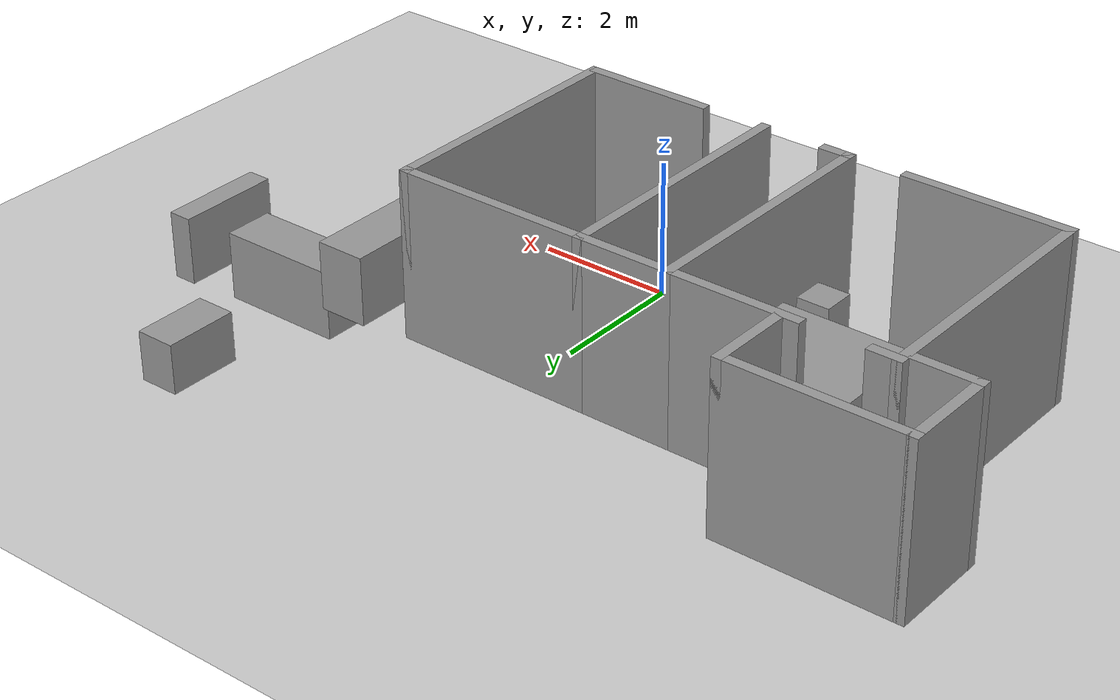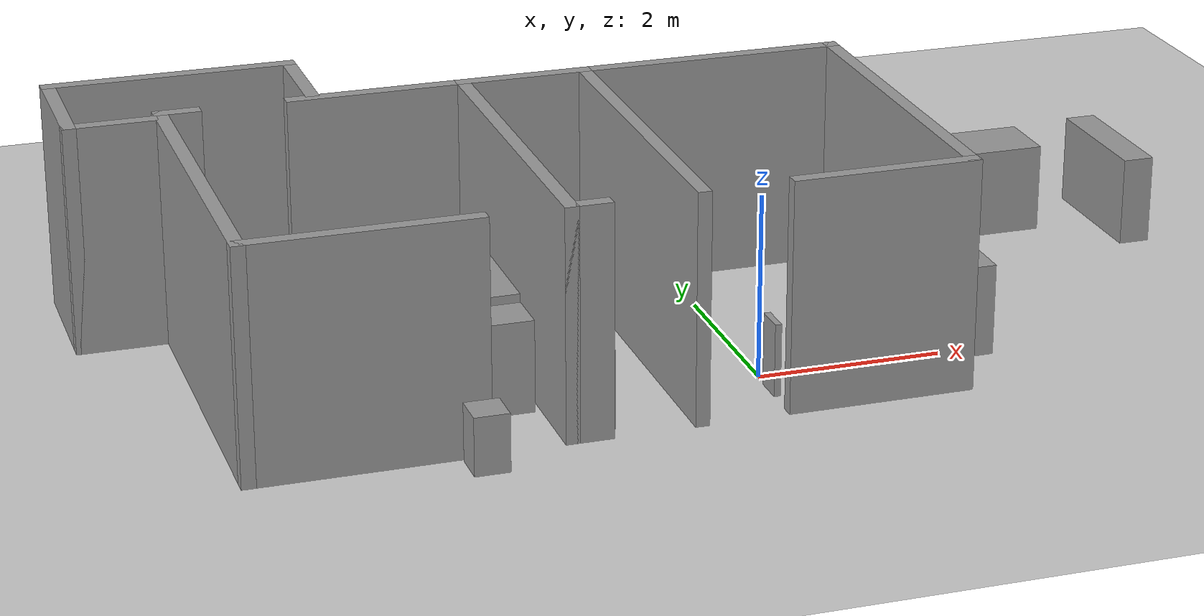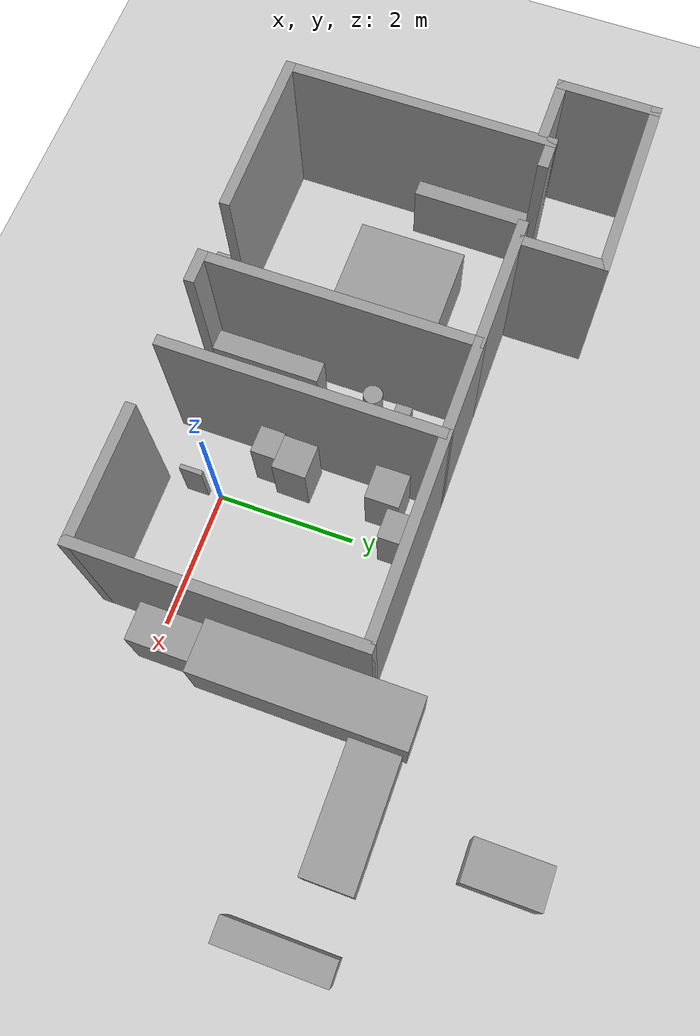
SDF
<sdf version="1.6">
 <world name="default">
  <model name="ground_plane">
   <static>1</static>
   <link name="link">
    <collision name="collision">
     <geometry><plane><normal>0 0 1</normal><size>100 100</size></plane></geometry>
     <surface><friction><ode><mu>100</mu><mu2>50</mu2></ode></friction></surface>
    </collision>
    <visual name="visual">
     <cast_shadows>0</cast_shadows>
     <geometry><plane><normal>0 0 1</normal><size>100 100</size></plane></geometry>
     <material>
      <script><uri>file://media/materials/scripts/gazebo.material</uri><name>Gazebo/Grey</name></script>
     </material>
    </visual>
   </link>
  </model>
  <model name="cma_escritorio">
   <pose>-1.8304 1.03024 0 0 -0 0</pose>
   <link name="Wall_11">
    <collision name="Wall_11_Collision">
     <geometry><box><size>2 0.15 2.5</size></box></geometry>
     <pose>0 0 1.25 0 -0 0</pose>
    </collision>
    <visual name="Wall_11_Visual">
     <pose>0 0 1.25 0 -0 0</pose>
     <geometry><box><size>2 0.15 2.5</size></box></geometry>
     <material>
      <script><uri>file://media/materials/scripts/gazebo.material</uri><name>Gazebo/Grey</name></script>
      <ambient>1 1 1 1</ambient>
     </material>
    </visual>
    <pose>-1.4 1.93 0 0 -0 3.14159</pose>
   </link>
   <link name="Wall_2">
    <collision name="Wall_2_Collision">
     <geometry><box><size>4 0.15 2.5</size></box></geometry>
     <pose>0 0 1.25 0 -0 0</pose>
    </collision>
    <visual name="Wall_2_Visual">
     <pose>0 0 1.25 0 -0 0</pose>
     <geometry><box><size>4 0.15 2.5</size></box></geometry>
     <material>
      <script><uri>file://media/materials/scripts/gazebo.material</uri><name>Gazebo/Grey</name></script>
      <ambient>1 1 1 1</ambient>
     </material>
    </visual>
    <pose>0.875 0.005 0 0 -0 1.5708</pose>
   </link>
   <link name="Wall_25">
    <collision name="Wall_25_Collision">
     <geometry><box><size>2.5 0.15 2.5</size></box></geometry>
     <pose>0 0 1.25 0 -0 0</pose>
    </collision>
    <visual name="Wall_25_Visual">
     <pose>0 0 1.25 0 -0 0</pose>
     <geometry><box><size>2.5 0.15 2.5</size></box></geometry>
     <material>
      <script><uri>file://media/materials/scripts/gazebo.material</uri><name>Gazebo/Grey</name></script>
      <ambient>1 1 1 1</ambient>
     </material>
    </visual>
    <pose>-2.55 -1.93 0 0 -0 3.14159</pose>
   </link>
   <link name="Wall_26">
    <collision name="Wall_26_Collision">
     <geometry><box><size>4 0.15 2.5</size></box></geometry>
     <pose>0 0 1.25 0 -0 0</pose>
    </collision>
    <visual name="Wall_26_Visual">
     <pose>0 0 1.25 0 -0 0</pose>
     <geometry><box><size>4 0.15 2.5</size></box></geometry>
     <material>
      <script><uri>file://media/materials/scripts/gazebo.material</uri><name>Gazebo/Grey</name></script>
      <ambient>1 1 1 1</ambient>
     </material>
    </visual>
    <pose>-3.725 -0.005 0 0 -0 1.5708</pose>
   </link>
   <link name="Wall_27">
    <collision name="Wall_27_Collision">
     <geometry><box><size>0.5 0.15 2.5</size></box></geometry>
     <pose>0 0 1.25 0 -0 0</pose>
    </collision>
    <visual name="Wall_27_Visual">
     <pose>0 0 1.25 0 -0 0</pose>
     <geometry><box><size>0.5 0.15 2.5</size></box></geometry>
     <material>
      <script><uri>file://media/materials/scripts/gazebo.material</uri><name>Gazebo/Grey</name></script>
      <ambient>1 1 1 1</ambient>
     </material>
    </visual>
    <pose>-3.55 1.92 0 0 -0 0</pose>
   </link>
   <link name="Wall_3">
    <collision name="Wall_3_Collision">
     <geometry><box><size>3 0.15 2.5</size></box></geometry>
     <pose>0 0 1.25 0 -0 0</pose>
    </collision>
    <visual name="Wall_3_Visual">
     <pose>0 0 1.25 0 -0 0</pose>
     <geometry><box><size>3 0.15 2.5</size></box></geometry>
     <material>
      <script><uri>file://media/materials/scripts/gazebo.material</uri><name>Gazebo/Grey</name></script>
      <ambient>1 1 1 1</ambient>
     </material>
    </visual>
    <pose>2.3 1.93 0 0 -0 0</pose>
   </link>
   <link name="Wall_4">
    <collision name="Wall_4_Collision">
     <geometry><box><size>4 0.15 2.5</size></box></geometry>
     <pose>0 0 1.25 0 -0 0</pose>
    </collision>
    <visual name="Wall_4_Visual">
     <pose>0 0 1.25 0 -0 0</pose>
     <geometry><box><size>4 0.15 2.5</size></box></geometry>
     <material>
      <script><uri>file://media/materials/scripts/gazebo.material</uri><name>Gazebo/Grey</name></script>
      <ambient>1 1 1 1</ambient>
     </material>
    </visual>
    <pose>3.725 0.005 0 0 0 -1.5708</pose>
   </link>
   <link name="Wall_5">
    <collision name="Wall_5_Collision">
     <geometry><box><size>2 0.15 2.5</size></box></geometry>
     <pose>0 0 1.25 0 -0 0</pose>
    </collision>
    <visual name="Wall_5_Visual">
     <pose>0 0 1.25 0 -0 0</pose>
     <geometry><box><size>2 0.15 2.5</size></box></geometry>
     <material>
      <script><uri>file://media/materials/scripts/gazebo.material</uri><name>Gazebo/Grey</name></script>
      <ambient>1 1 1 1</ambient>
     </material>
    </visual>
    <pose>2.8 -1.92 0 0 -0 3.14159</pose>
   </link>
   <link name="Wall_7">
    <collision name="Wall_7_Collision">
     <geometry><box><size>1.5 0.15 2.5</size></box></geometry>
     <pose>0 0 1.25 0 -0 0</pose>
    </collision>
    <visual name="Wall_7_Visual">
     <pose>0 0 1.25 0 -0 0</pose>
     <geometry><box><size>1.5 0.15 2.5</size></box></geometry>
     <material>
      <script><uri>file://media/materials/scripts/gazebo.material</uri><name>Gazebo/Grey</name></script>
      <ambient>1 1 1 1</ambient>
     </material>
    </visual>
    <pose>0.2 1.93 0 0 -0 3.14159</pose>
   </link>
   <link name="Wall_8">
    <collision name="Wall_8_Collision">
     <geometry><box><size>4 0.15 2.5</size></box></geometry>
     <pose>0 0 1.25 0 -0 0</pose>
    </collision>
    <visual name="Wall_8_Visual">
     <pose>0 0 1.25 0 -0 0</pose>
     <geometry><box><size>4 0.15 2.5</size></box></geometry>
     <material>
      <script><uri>file://media/materials/scripts/gazebo.material</uri><name>Gazebo/Grey</name></script>
      <ambient>1 1 1 1</ambient>
     </material>
    </visual>
    <pose>-0.475 0.005 0 0 0 -1.5708</pose>
   </link>
   <link name="Wall_9">
    <collision name="Wall_9_Collision">
     <geometry><box><size>0.5 0.15 2.5</size></box></geometry>
     <pose>0 0 1.25 0 -0 0</pose>
    </collision>
    <visual name="Wall_9_Visual">
     <pose>0 0 1.25 0 -0 0</pose>
     <geometry><box><size>0.5 0.15 2.5</size></box></geometry>
     <material>
      <script><uri>file://media/materials/scripts/gazebo.material</uri><name>Gazebo/Grey</name></script>
      <ambient>1 1 1 1</ambient>
     </material>
    </visual>
    <pose>-0.3 -1.92 0 0 -0 0</pose>
   </link>
   <static>1</static>
  </model>
  <model name="cma_banheiro">
   <pose>-5.22928 3.4871 0 0 -0 0</pose>
   <link name="Wall_0">
    <collision name="Wall_0_Collision">
     <geometry><box><size>1 0.15 2.5</size></box></geometry>
     <pose>0 0 1.25 0 -0 0</pose>
    </collision>
    <visual name="Wall_0_Visual">
     <pose>0 0 1.25 0 -0 0</pose>
     <geometry><box><size>1 0.15 2.5</size></box></geometry>
     <material>
      <script><uri>file://media/materials/scripts/gazebo.material</uri><name>Gazebo/Grey</name></script>
      <ambient>1 1 1 1</ambient>
     </material>
    </visual>
    <pose>-0.875 -0.675 0 0 -0 3.14159</pose>
   </link>
   <link name="Wall_1">
    <collision name="Wall_1_Collision">
     <geometry><box><size>1.5 0.15 2.5</size></box></geometry>
     <pose>0 0 1.25 0 -0 0</pose>
    </collision>
    <visual name="Wall_1_Visual">
     <pose>0 0 1.25 0 -0 0</pose>
     <geometry><box><size>1.5 0.15 2.5</size></box></geometry>
     <material>
      <script><uri>file://media/materials/scripts/gazebo.material</uri><name>Gazebo/Grey</name></script>
      <ambient>1 1 1 1</ambient>
     </material>
    </visual>
    <pose>-1.3 0 0 0 -0 1.5708</pose>
   </link>
   <link name="Wall_2">
    <collision name="Wall_2_Collision">
     <geometry><box><size>2.75 0.15 2.5</size></box></geometry>
     <pose>0 0 1.25 0 -0 0</pose>
    </collision>
    <visual name="Wall_2_Visual">
     <pose>0 0 1.25 0 -0 0</pose>
     <geometry><box><size>2.75 0.15 2.5</size></box></geometry>
     <material>
      <script><uri>file://media/materials/scripts/gazebo.material</uri><name>Gazebo/Grey</name></script>
      <ambient>1 1 1 1</ambient>
     </material>
    </visual>
    <pose>0 0.675 0 0 -0 0</pose>
   </link>
   <link name="Wall_4">
    <collision name="Wall_4_Collision">
     <geometry><box><size>1.25 0.15 2.5</size></box></geometry>
     <pose>0 0 1.25 0 -0 0</pose>
    </collision>
    <visual name="Wall_4_Visual">
     <pose>0 0 1.25 0 -0 0</pose>
     <geometry><box><size>1.25 0.15 2.5</size></box></geometry>
     <material>
      <script><uri>file://media/materials/scripts/gazebo.material</uri><name>Gazebo/Grey</name></script>
      <ambient>1 1 1 1</ambient>
     </material>
    </visual>
    <pose>1.3 0.125 0 0 0 -1.5708</pose>
   </link>
   <static>1</static>
  </model>
  <model name="cma_gaveteiro_pequeno_0">
   <link name="link_0">
    <pose>0.256174 1.25055 0.5 0 -0 0</pose>
    <inertial>
     <mass>0.187186</mass>
     <inertia>
      <ixx>0.01851</ixx>
      <ixy>0</ixy>
      <ixz>0</ixz>
      <iyy>0.0185276</iyy>
      <iyz>0</iyz>
      <izz>0.00583981</izz>
     </inertia>
    </inertial>
    <visual name="visual">
     <geometry><box><size>0.433317 0.432002 1</size></box></geometry>
     <material>
      <lighting>1</lighting>
      <script><uri>file://media/materials/scripts/gazebo.material</uri><name>Gazebo/Grey</name></script>
      <ambient>0.3 0.3 0.3 1</ambient>
      <diffuse>0.7 0.7 0.7 1</diffuse>
      <specular>0.01 0.01 0.01 1</specular>
      <emissive>0 0 0 1</emissive>
     </material>
    </visual>
    <collision name="collision">
     <geometry><box><size>0.433317 0.432002 1</size></box></geometry>
     <surface>
      <friction>
       <ode><mu>1</mu><mu2>1</mu2><fdir1>0 0 0</fdir1><slip1>0</slip1><slip2>0</slip2></ode>
       <torsional>
        <coefficient>1</coefficient>
        <patch_radius>0</patch_radius>
        <surface_radius>0</surface_radius>
        <use_patch_radius>1</use_patch_radius>
        <ode><slip>0</slip></ode>
       </torsional>
      </friction>
      <bounce><restitution_coefficient>0</restitution_coefficient><threshold>1e+06</threshold></bounce>
      <contact>
       <collide_without_contact>0</collide_without_contact>
       <collide_without_contact_bitmask>1</collide_without_contact_bitmask>
       <collide_bitmask>1</collide_bitmask>
       <ode>
        <soft_cfm>0</soft_cfm>
        <soft_erp>0.2</soft_erp>
        <kp>1e+13</kp>
        <kd>1</kd>
        <max_vel>0.01</max_vel>
        <min_depth>0</min_depth>
       </ode>
       <bullet>
        <split_impulse>1</split_impulse>
        <split_impulse_penetration_threshold>-0.01</split_impulse_penetration_threshold>
        <soft_cfm>0</soft_cfm>
        <soft_erp>0.2</soft_erp>
        <kp>1e+13</kp>
        <kd>1</kd>
       </bullet>
      </contact>
     </surface>
    </collision>
   </link>
   <static>0</static>
   <pose>-0.336081 1.39513 5e-06 -6e-06 -1e-06 -8.4e-05</pose>
  </model>
  <model name="cma_gaveteiro">
   <link name="link_0">
    <pose>-0 4e-06 0 0 -0 0</pose>
    <inertial>
     <mass>0.245086</mass>
     <inertia>
      <ixx>0.025418</ixx>
      <ixy>0</ixy>
      <ixz>0</ixz>
      <iyy>0.0254411</iyy>
      <iyz>0</iyz>
      <izz>0.0100113</izz>
     </inertia>
    </inertial>
    <visual name="visual">
     <geometry><box><size>0.495657 0.494491 1</size></box></geometry>
     <material>
      <lighting>1</lighting>
      <script><uri>file://media/materials/scripts/gazebo.material</uri><name>Gazebo/Grey</name></script>
      <ambient>0.3 0.3 0.3 1</ambient>
      <diffuse>0.7 0.7 0.7 1</diffuse>
      <specular>0.01 0.01 0.01 1</specular>
      <emissive>0 0 0 1</emissive>
     </material>
    </visual>
    <collision name="collision">
     <geometry><box><size>0.495657 0.494491 1</size></box></geometry>
     <surface>
      <friction>
       <ode><mu>1</mu><mu2>1</mu2><fdir1>0 0 0</fdir1><slip1>0</slip1><slip2>0</slip2></ode>
       <torsional>
        <coefficient>1</coefficient>
        <patch_radius>0</patch_radius>
        <surface_radius>0</surface_radius>
        <use_patch_radius>1</use_patch_radius>
        <ode><slip>0</slip></ode>
       </torsional>
      </friction>
      <bounce><restitution_coefficient>0</restitution_coefficient><threshold>1e+06</threshold></bounce>
      <contact>
       <collide_without_contact>0</collide_without_contact>
       <collide_without_contact_bitmask>1</collide_without_contact_bitmask>
       <collide_bitmask>1</collide_bitmask>
       <ode>
        <soft_cfm>0</soft_cfm>
        <soft_erp>0.2</soft_erp>
        <kp>1e+13</kp>
        <kd>1</kd>
        <max_vel>0.01</max_vel>
        <min_depth>0</min_depth>
       </ode>
       <bullet>
        <split_impulse>1</split_impulse>
        <split_impulse_penetration_threshold>-0.01</split_impulse_penetration_threshold>
        <soft_cfm>0</soft_cfm>
        <soft_erp>0.2</soft_erp>
        <kp>1e+13</kp>
        <kd>1</kd>
       </bullet>
      </contact>
     </surface>
    </collision>
   </link>
   <static>0</static>
   <pose>-0.591981 2.32617 0.500001 1e-06 1e-06 0.000361</pose>
  </model>
  <model name="cma_gaveteiro_0">
   <link name="link_0">
    <pose>-0 4e-06 0 0 -0 0</pose>
    <inertial>
     <mass>0.245086</mass>
     <inertia>
      <ixx>0.025418</ixx>
      <ixy>0</ixy>
      <ixz>0</ixz>
      <iyy>0.0254411</iyy>
      <iyz>0</iyz>
      <izz>0.0100113</izz>
     </inertia>
    </inertial>
    <visual name="visual">
     <geometry><box><size>0.495657 0.494491 1</size></box></geometry>
     <material>
      <lighting>1</lighting>
      <script><uri>file://media/materials/scripts/gazebo.material</uri><name>Gazebo/Grey</name></script>
      <ambient>0.3 0.3 0.3 1</ambient>
      <diffuse>0.7 0.7 0.7 1</diffuse>
      <specular>0.01 0.01 0.01 1</specular>
      <emissive>0 0 0 1</emissive>
     </material>
    </visual>
    <collision name="collision">
     <geometry><box><size>0.495657 0.494491 1</size></box></geometry>
     <surface>
      <friction>
       <ode><mu>1</mu><mu2>1</mu2><fdir1>0 0 0</fdir1><slip1>0</slip1><slip2>0</slip2></ode>
       <torsional>
        <coefficient>1</coefficient>
        <patch_radius>0</patch_radius>
        <surface_radius>0</surface_radius>
        <use_patch_radius>1</use_patch_radius>
        <ode><slip>0</slip></ode>
       </torsional>
      </friction>
      <bounce><restitution_coefficient>0</restitution_coefficient><threshold>1e+06</threshold></bounce>
      <contact>
       <collide_without_contact>0</collide_without_contact>
       <collide_without_contact_bitmask>1</collide_without_contact_bitmask>
       <collide_bitmask>1</collide_bitmask>
       <ode>
        <soft_cfm>0</soft_cfm>
        <soft_erp>0.2</soft_erp>
        <kp>1e+13</kp>
        <kd>1</kd>
        <max_vel>0.01</max_vel>
        <min_depth>0</min_depth>
       </ode>
       <bullet>
        <split_impulse>1</split_impulse>
        <split_impulse_penetration_threshold>-0.01</split_impulse_penetration_threshold>
        <soft_cfm>0</soft_cfm>
        <soft_erp>0.2</soft_erp>
        <kp>1e+13</kp>
        <kd>1</kd>
       </bullet>
      </contact>
     </surface>
    </collision>
   </link>
   <static>0</static>
   <pose>-0.577938 0.983942 0.5 -1e-06 -1e-06 -0.015</pose>
  </model>
  <model name="cma_apoio_s">
   <link name="link_1">
    <pose>-1.9376 -3.46551 0.5 0 -0 0</pose>
    <inertial>
     <mass>0.0878463</mass>
     <inertia>
      <ixx>0.00392696</ixx>
      <ixy>0</ixy>
      <ixz>0</ixz>
      <iyy>0.00385356</iyy>
      <iyz>0</iyz>
      <izz>0.0020587</izz>
     </inertia>
    </inertial>
    <visual name="visual">
     <geometry><box><size>0.368223 0.381592 0.625118</size></box></geometry>
     <material>
      <lighting>1</lighting>
      <script><uri>file://media/materials/scripts/gazebo.material</uri><name>Gazebo/Grey</name></script>
      <ambient>0.3 0.3 0.3 1</ambient>
      <diffuse>0.7 0.7 0.7 1</diffuse>
      <specular>0.01 0.01 0.01 1</specular>
      <emissive>0 0 0 1</emissive>
     </material>
    </visual>
    <collision name="collision">
     <geometry><box><size>0.368223 0.381592 0.625118</size></box></geometry>
     <surface>
      <friction>
       <ode><mu>1</mu><mu2>1</mu2><fdir1>0 0 0</fdir1><slip1>0</slip1><slip2>0</slip2></ode>
       <torsional>
        <coefficient>1</coefficient>
        <patch_radius>0</patch_radius>
        <surface_radius>0</surface_radius>
        <use_patch_radius>1</use_patch_radius>
        <ode><slip>0</slip></ode>
       </torsional>
      </friction>
      <bounce><restitution_coefficient>0</restitution_coefficient><threshold>1e+06</threshold></bounce>
      <contact>
       <collide_without_contact>0</collide_without_contact>
       <collide_without_contact_bitmask>1</collide_without_contact_bitmask>
       <collide_bitmask>1</collide_bitmask>
       <ode>
        <soft_cfm>0</soft_cfm>
        <soft_erp>0.2</soft_erp>
        <kp>1e+13</kp>
        <kd>1</kd>
        <max_vel>0.01</max_vel>
        <min_depth>0</min_depth>
       </ode>
       <bullet>
        <split_impulse>1</split_impulse>
        <split_impulse_penetration_threshold>-0.01</split_impulse_penetration_threshold>
        <soft_cfm>0</soft_cfm>
        <soft_erp>0.2</soft_erp>
        <kp>1e+13</kp>
        <kd>1</kd>
       </bullet>
      </contact>
     </surface>
    </collision>
   </link>
   <static>0</static>
   <pose>-1.3105 2.2718 -0.187442 -1e-06 -1e-06 -0.000413</pose>
  </model>
  <model name="cma_cama_c_0">
   <link name="link_0">
    <pose>5e-06 -4e-06 0 0 -0 0</pose>
    <inertial>
     <mass>3.18358</mass>
     <inertia><ixx>0.934862</ixx><ixy>0</ixy><ixz>0</ixz><iyy>1.33069</iyy><iyz>0</iyz><izz>1.73496</izz></inertia>
    </inertial>
    <visual name="visual">
     <geometry><box><size>2.00394 1.58866 1</size></box></geometry>
     <material>
      <lighting>1</lighting>
      <script><uri>file://media/materials/scripts/gazebo.material</uri><name>Gazebo/Grey</name></script>
      <ambient>0.3 0.3 0.3 1</ambient>
      <diffuse>0.7 0.7 0.7 1</diffuse>
      <specular>0.01 0.01 0.01 1</specular>
      <emissive>0 0 0 1</emissive>
     </material>
    </visual>
    <collision name="collision">
     <geometry><box><size>2.00394 1.58866 1</size></box></geometry>
     <surface>
      <friction>
       <ode><mu>1</mu><mu2>1</mu2><fdir1>0 0 0</fdir1><slip1>0</slip1><slip2>0</slip2></ode>
       <torsional>
        <coefficient>1</coefficient>
        <patch_radius>0</patch_radius>
        <surface_radius>0</surface_radius>
        <use_patch_radius>1</use_patch_radius>
        <ode><slip>0</slip></ode>
       </torsional>
      </friction>
      <bounce><restitution_coefficient>0</restitution_coefficient><threshold>1e+06</threshold></bounce>
      <contact>
       <collide_without_contact>0</collide_without_contact>
       <collide_without_contact_bitmask>1</collide_without_contact_bitmask>
       <collide_bitmask>1</collide_bitmask>
       <ode>
        <soft_cfm>0</soft_cfm>
        <soft_erp>0.2</soft_erp>
        <kp>1e+13</kp>
        <kd>1</kd>
        <max_vel>0.01</max_vel>
        <min_depth>0</min_depth>
       </ode>
       <bullet>
        <split_impulse>1</split_impulse>
        <split_impulse_penetration_threshold>-0.01</split_impulse_penetration_threshold>
        <soft_cfm>0</soft_cfm>
        <soft_erp>0.2</soft_erp>
        <kp>1e+13</kp>
        <kd>1</kd>
       </bullet>
      </contact>
     </surface>
    </collision>
   </link>
   <static>0</static>
   <pose>-3.38238 1.38787 0.5 0 0 -2e-06</pose>
  </model>
  <model name="cma_bau_s_0">
   <link name="link_1">
    <pose>0.109594 0.272293 0 0 -0 0</pose>
    <inertial>
     <mass>0.125479</mass>
     <inertia>
      <ixx>0.00641943</ixx>
      <ixy>0</ixy>
      <ixz>0</ixz>
      <iyy>0.0059754</iyy>
      <iyz>0</iyz>
      <izz>0.00422085</izz>
     </inertia>
    </inertial>
    <visual name="visual">
     <geometry><box><size>0.424964 0.472283 0.625118</size></box></geometry>
     <material>
      <lighting>1</lighting>
      <script><uri>file://media/materials/scripts/gazebo.material</uri><name>Gazebo/Grey</name></script>
      <ambient>0.3 0.3 0.3 1</ambient>
      <diffuse>0.7 0.7 0.7 1</diffuse>
      <specular>0.01 0.01 0.01 1</specular>
      <emissive>0 0 0 1</emissive>
     </material>
    </visual>
    <collision name="collision">
     <geometry><box><size>0.424964 0.472283 0.625118</size></box></geometry>
     <surface>
      <friction>
       <ode><mu>1</mu><mu2>1</mu2><fdir1>0 0 0</fdir1><slip1>0</slip1><slip2>0</slip2></ode>
       <torsional>
        <coefficient>1</coefficient>
        <patch_radius>0</patch_radius>
        <surface_radius>0</surface_radius>
        <use_patch_radius>1</use_patch_radius>
        <ode><slip>0</slip></ode>
       </torsional>
      </friction>
      <bounce><restitution_coefficient>0</restitution_coefficient><threshold>1e+06</threshold></bounce>
      <contact>
       <collide_without_contact>0</collide_without_contact>
       <collide_without_contact_bitmask>1</collide_without_contact_bitmask>
       <collide_bitmask>1</collide_bitmask>
       <ode>
        <soft_cfm>0</soft_cfm>
        <soft_erp>0.2</soft_erp>
        <kp>1e+13</kp>
        <kd>1</kd>
        <max_vel>0.01</max_vel>
        <min_depth>0</min_depth>
       </ode>
       <bullet>
        <split_impulse>1</split_impulse>
        <split_impulse_penetration_threshold>-0.01</split_impulse_penetration_threshold>
        <soft_cfm>0</soft_cfm>
        <soft_erp>0.2</soft_erp>
        <kp>1e+13</kp>
        <kd>1</kd>
       </bullet>
      </contact>
     </surface>
    </collision>
   </link>
   <static>0</static>
   <pose>-2.76528 2.24285 0.312559 3e-06 -0 -0.000649</pose>
  </model>
  <model name="cma_gaveteiro_1">
   <link name="link_0">
    <pose>-0 4e-06 0 0 -0 0</pose>
    <inertial>
     <mass>0.245086</mass>
     <inertia>
      <ixx>0.025418</ixx>
      <ixy>0</ixy>
      <ixz>0</ixz>
      <iyy>0.0254411</iyy>
      <iyz>0</iyz>
      <izz>0.0100113</izz>
     </inertia>
    </inertial>
    <visual name="visual">
     <geometry><box><size>0.495657 0.494491 1</size></box></geometry>
     <material>
      <lighting>1</lighting>
      <script><uri>file://media/materials/scripts/gazebo.material</uri><name>Gazebo/Grey</name></script>
      <ambient>0.3 0.3 0.3 1</ambient>
      <diffuse>0.7 0.7 0.7 1</diffuse>
      <specular>0.01 0.01 0.01 1</specular>
      <emissive>0 0 0 1</emissive>
     </material>
    </visual>
    <collision name="collision">
     <geometry><box><size>0.495657 0.494491 1</size></box></geometry>
     <surface>
      <friction>
       <ode><mu>1</mu><mu2>1</mu2><fdir1>0 0 0</fdir1><slip1>0</slip1><slip2>0</slip2></ode>
       <torsional>
        <coefficient>1</coefficient>
        <patch_radius>0</patch_radius>
        <surface_radius>0</surface_radius>
        <use_patch_radius>1</use_patch_radius>
        <ode><slip>0</slip></ode>
       </torsional>
      </friction>
      <bounce><restitution_coefficient>0</restitution_coefficient><threshold>1e+06</threshold></bounce>
      <contact>
       <collide_without_contact>0</collide_without_contact>
       <collide_without_contact_bitmask>1</collide_without_contact_bitmask>
       <collide_bitmask>1</collide_bitmask>
       <ode>
        <soft_cfm>0</soft_cfm>
        <soft_erp>0.2</soft_erp>
        <kp>1e+13</kp>
        <kd>1</kd>
        <max_vel>0.01</max_vel>
        <min_depth>0</min_depth>
       </ode>
       <bullet>
        <split_impulse>1</split_impulse>
        <split_impulse_penetration_threshold>-0.01</split_impulse_penetration_threshold>
        <soft_cfm>0</soft_cfm>
        <soft_erp>0.2</soft_erp>
        <kp>1e+13</kp>
        <kd>1</kd>
       </bullet>
      </contact>
     </surface>
    </collision>
   </link>
   <static>0</static>
   <pose>-2.68858 0.131636 0.499997 6e-06 -5e-06 -0.000549</pose>
  </model>
  <model name="cma_armario_6">
   <link name="link_0">
    <pose>1.32157 0.885178 0.5 0 -0 0</pose>
    <inertial>
     <mass>0.402376</mass>
     <inertia>
      <ixx>0.0353686</ixx>
      <ixy>0</ixy>
      <ixz>0</ixz>
      <iyy>0.132616</iyy>
      <iyz>0</iyz>
      <izz>0.100922</izz>
     </inertia>
    </inertial>
    <visual name="visual">
     <geometry><box><size>1.71877 0.234069 1</size></box></geometry>
     <material>
      <lighting>1</lighting>
      <script><uri>file://media/materials/scripts/gazebo.material</uri><name>Gazebo/Grey</name></script>
      <ambient>0.3 0.3 0.3 1</ambient>
      <diffuse>0.7 0.7 0.7 1</diffuse>
      <specular>0.01 0.01 0.01 1</specular>
      <emissive>0 0 0 1</emissive>
     </material>
    </visual>
    <collision name="collision">
     <geometry><box><size>1.71877 0.234069 1</size></box></geometry>
     <surface>
      <friction>
       <ode><mu>1</mu><mu2>1</mu2><fdir1>0 0 0</fdir1><slip1>0</slip1><slip2>0</slip2></ode>
       <torsional>
        <coefficient>1</coefficient>
        <patch_radius>0</patch_radius>
        <surface_radius>0</surface_radius>
        <use_patch_radius>1</use_patch_radius>
        <ode><slip>0</slip></ode>
       </torsional>
      </friction>
      <bounce><restitution_coefficient>0</restitution_coefficient><threshold>1e+06</threshold></bounce>
      <contact>
       <collide_without_contact>0</collide_without_contact>
       <collide_without_contact_bitmask>1</collide_without_contact_bitmask>
       <collide_bitmask>1</collide_bitmask>
       <ode>
        <soft_cfm>0</soft_cfm>
        <soft_erp>0.2</soft_erp>
        <kp>1e+13</kp>
        <kd>1</kd>
        <max_vel>0.01</max_vel>
        <min_depth>0</min_depth>
       </ode>
       <bullet>
        <split_impulse>1</split_impulse>
        <split_impulse_penetration_threshold>-0.01</split_impulse_penetration_threshold>
        <soft_cfm>0</soft_cfm>
        <soft_erp>0.2</soft_erp>
        <kp>1e+13</kp>
        <kd>1</kd>
       </bullet>
      </contact>
     </surface>
    </collision>
   </link>
   <static>0</static>
   <pose>-4.38626 0.687442 2e-06 -2e-06 -0 1.56576</pose>
  </model>
  <model name="cma_gaveteiro_pequeno_e">
   <link name="link_1">
    <pose>1e-06 -3e-06 0 0 -0 0</pose>
    <inertial>
     <mass>0.145532</mass>
     <inertia>
      <ixx>0.0136813</ixx>
      <ixy>0</ixy>
      <ixz>0</ixz>
      <iyy>0.0141327</iyy>
      <iyz>0</iyz>
      <izz>0.00355866</izz>
     </inertia>
    </inertial>
    <visual name="visual">
     <geometry><box><size>0.4066 0.357918 1</size></box></geometry>
     <material>
      <lighting>1</lighting>
      <script><uri>file://media/materials/scripts/gazebo.material</uri><name>Gazebo/Grey</name></script>
      <ambient>0.3 0.3 0.3 1</ambient>
      <diffuse>0.7 0.7 0.7 1</diffuse>
      <specular>0.01 0.01 0.01 1</specular>
      <emissive>0 0 0 1</emissive>
     </material>
    </visual>
    <collision name="collision">
     <geometry><box><size>0.4066 0.357918 1</size></box></geometry>
     <surface>
      <friction>
       <ode><mu>1</mu><mu2>1</mu2><fdir1>0 0 0</fdir1><slip1>0</slip1><slip2>0</slip2></ode>
       <torsional>
        <coefficient>1</coefficient>
        <patch_radius>0</patch_radius>
        <surface_radius>0</surface_radius>
        <use_patch_radius>1</use_patch_radius>
        <ode><slip>0</slip></ode>
       </torsional>
      </friction>
      <bounce><restitution_coefficient>0</restitution_coefficient><threshold>1e+06</threshold></bounce>
      <contact>
       <collide_without_contact>0</collide_without_contact>
       <collide_without_contact_bitmask>1</collide_without_contact_bitmask>
       <collide_bitmask>1</collide_bitmask>
       <ode>
        <soft_cfm>0</soft_cfm>
        <soft_erp>0.2</soft_erp>
        <kp>1e+13</kp>
        <kd>1</kd>
        <max_vel>0.01</max_vel>
        <min_depth>0</min_depth>
       </ode>
       <bullet>
        <split_impulse>1</split_impulse>
        <split_impulse_penetration_threshold>-0.01</split_impulse_penetration_threshold>
        <soft_cfm>0</soft_cfm>
        <soft_erp>0.2</soft_erp>
        <kp>1e+13</kp>
        <kd>1</kd>
       </bullet>
      </contact>
     </surface>
    </collision>
   </link>
   <static>0</static>
   <pose>-0.653006 0.558816 0.499999 3e-06 -3e-06 -0.014985</pose>
  </model>
  <model name="cma_pe_mesa2">
   <link name="link_0">
    <pose>-1e-06 0 0 0 -0 0</pose>
    <inertial>
     <mass>0.0184993</mass>
     <inertia>
      <ixx>0.00113785</ixx>
      <ixy>0</ixy>
      <ixz>0</ixz>
      <iyy>0.000973568</iyy>
      <iyz>0</iyz>
      <izz>0.000179385</izz>
     </inertia>
    </inertial>
    <visual name="visual">
     <geometry><box><size>0.070005 0.33386 0.791592</size></box></geometry>
     <material>
      <lighting>1</lighting>
      <script><uri>file://media/materials/scripts/gazebo.material</uri><name>Gazebo/Grey</name></script>
      <ambient>0.3 0.3 0.3 1</ambient>
      <diffuse>0.7 0.7 0.7 1</diffuse>
      <specular>0.01 0.01 0.01 1</specular>
      <emissive>0 0 0 1</emissive>
     </material>
    </visual>
    <collision name="collision">
     <geometry><box><size>0.070005 0.33386 0.791592</size></box></geometry>
     <surface>
      <friction>
       <ode><mu>1</mu><mu2>1</mu2><fdir1>0 0 0</fdir1><slip1>0</slip1><slip2>0</slip2></ode>
       <torsional>
        <coefficient>1</coefficient>
        <patch_radius>0</patch_radius>
        <surface_radius>0</surface_radius>
        <use_patch_radius>1</use_patch_radius>
        <ode><slip>0</slip></ode>
       </torsional>
      </friction>
      <bounce><restitution_coefficient>0</restitution_coefficient><threshold>1e+06</threshold></bounce>
      <contact>
       <collide_without_contact>0</collide_without_contact>
       <collide_without_contact_bitmask>1</collide_without_contact_bitmask>
       <collide_bitmask>1</collide_bitmask>
       <ode>
        <soft_cfm>0</soft_cfm>
        <soft_erp>0.2</soft_erp>
        <kp>1e+13</kp>
        <kd>1</kd>
        <max_vel>0.01</max_vel>
        <min_depth>0</min_depth>
       </ode>
       <bullet>
        <split_impulse>1</split_impulse>
        <split_impulse_penetration_threshold>-0.01</split_impulse_penetration_threshold>
        <soft_cfm>0</soft_cfm>
        <soft_erp>0.2</soft_erp>
        <kp>1e+13</kp>
        <kd>1</kd>
       </bullet>
      </contact>
     </surface>
    </collision>
   </link>
   <static>0</static>
   <pose>0.008625 -0.342092 0.395796 0 -2e-06 -0.000886</pose>
  </model>
  <model name="cma_armario_coz_190x70cm">
   <link name="link_0">
    <pose>5.20958 2.97661 0.5 0 0 -1.57068</pose>
    <inertial>
     <mass>1.2966</mass>
     <inertia>
      <ixx>0.454477</ixx>
      <ixy>0</ixy>
      <ixz>0</ixz>
      <iyy>0.164706</iyy>
      <iyz>0</iyz>
      <izz>0.403084</izz>
     </inertia>
    </inertial>
    <visual name="visual">
     <geometry><box><size>0.724184 1.79058 1</size></box></geometry>
     <material>
      <lighting>1</lighting>
      <script><uri>file://media/materials/scripts/gazebo.material</uri><name>Gazebo/Grey</name></script>
      <ambient>0.3 0.3 0.3 1</ambient>
      <diffuse>0.7 0.7 0.7 1</diffuse>
      <specular>0.01 0.01 0.01 1</specular>
      <emissive>0 0 0 1</emissive>
     </material>
    </visual>
    <collision name="collision">
     <geometry><box><size>0.724184 1.79058 1</size></box></geometry>
     <surface>
      <friction>
       <ode><mu>1</mu><mu2>1</mu2><fdir1>0 0 0</fdir1><slip1>0</slip1><slip2>0</slip2></ode>
       <torsional>
        <coefficient>1</coefficient>
        <patch_radius>0</patch_radius>
        <surface_radius>0</surface_radius>
        <use_patch_radius>1</use_patch_radius>
        <ode><slip>0</slip></ode>
       </torsional>
      </friction>
      <bounce><restitution_coefficient>0</restitution_coefficient><threshold>1e+06</threshold></bounce>
      <contact>
       <collide_without_contact>0</collide_without_contact>
       <collide_without_contact_bitmask>1</collide_without_contact_bitmask>
       <collide_bitmask>1</collide_bitmask>
       <ode>
        <soft_cfm>0</soft_cfm>
        <soft_erp>0.2</soft_erp>
        <kp>1e+13</kp>
        <kd>1</kd>
        <max_vel>0.01</max_vel>
        <min_depth>0</min_depth>
       </ode>
       <bullet>
        <split_impulse>1</split_impulse>
        <split_impulse_penetration_threshold>-0.01</split_impulse_penetration_threshold>
        <soft_cfm>0</soft_cfm>
        <soft_erp>0.2</soft_erp>
        <kp>1e+13</kp>
        <kd>1</kd>
       </bullet>
      </contact>
     </surface>
    </collision>
   </link>
   <model name="cma_armario_coz_100x50cm">
    <link name="link_0">
     <pose>-3e-06 -3e-06 0 0 -0 0</pose>
     <inertial>
      <mass>0.536193</mass>
      <inertia>
       <ixx>0.0893657</ixx>
       <ixy>0</ixy>
       <ixz>0</ixz>
       <iyy>0.0575293</iyy>
       <iyz>0</iyz>
       <izz>0.0575293</izz>
      </inertia>
     </inertial>
     <visual name="visual">
      <geometry><box><size>0.536193 1 1</size></box></geometry>
      <material>
       <lighting>1</lighting>
       <script><uri>file://media/materials/scripts/gazebo.material</uri><name>Gazebo/Grey</name></script>
       <ambient>0.3 0.3 0.3 1</ambient>
       <diffuse>0.7 0.7 0.7 1</diffuse>
       <specular>0.01 0.01 0.01 1</specular>
       <emissive>0 0 0 1</emissive>
      </material>
     </visual>
     <collision name="collision">
      <geometry><box><size>0.536193 1 1</size></box></geometry>
      <surface>
       <friction>
        <ode><mu>1</mu><mu2>1</mu2><fdir1>0 0 0</fdir1><slip1>0</slip1><slip2>0</slip2></ode>
        <torsional>
         <coefficient>1</coefficient>
         <patch_radius>0</patch_radius>
         <surface_radius>0</surface_radius>
         <use_patch_radius>1</use_patch_radius>
         <ode><slip>0</slip></ode>
        </torsional>
       </friction>
       <bounce><restitution_coefficient>0</restitution_coefficient><threshold>1e+06</threshold></bounce>
       <contact>
        <collide_without_contact>0</collide_without_contact>
        <collide_without_contact_bitmask>1</collide_without_contact_bitmask>
        <collide_bitmask>1</collide_bitmask>
        <ode>
         <soft_cfm>0</soft_cfm>
         <soft_erp>0.2</soft_erp>
         <kp>1e+13</kp>
         <kd>1</kd>
         <max_vel>0.01</max_vel>
         <min_depth>0</min_depth>
        </ode>
        <bullet>
         <split_impulse>1</split_impulse>
         <split_impulse_penetration_threshold>-0.01</split_impulse_penetration_threshold>
         <soft_cfm>0</soft_cfm>
         <soft_erp>0.2</soft_erp>
         <kp>1e+13</kp>
         <kd>1</kd>
        </bullet>
       </contact>
      </surface>
     </collision>
    </link>
    <static>0</static>
    <pose>3.86455 -0.048915 0.5 0 -0 0</pose>
   </model>
   <model name="cma_armario_coz_300x70cm">
    <link name="link_0">
     <pose>3.26428 1.50856 0.5 0 -0 0</pose>
     <inertial>
      <mass>2.13833</mass>
      <inertia><ixx>1.732</ixx><ixy>0</ixy><ixz>0</ixz><iyy>0.271637</iyy><iyz>0</iyz><izz>1.64725</izz></inertia>
     </inertial>
     <visual name="visual">
      <geometry><box><size>0.724184 2.9529 1</size></box></geometry>
      <material>
       <lighting>1</lighting>
       <script><uri>file://media/materials/scripts/gazebo.material</uri><name>Gazebo/Grey</name></script>
       <ambient>0.3 0.3 0.3 1</ambient>
       <diffuse>0.7 0.7 0.7 1</diffuse>
       <specular>0.01 0.01 0.01 1</specular>
       <emissive>0 0 0 1</emissive>
      </material>
     </visual>
     <collision name="collision">
      <geometry><box><size>0.724184 2.9529 1</size></box></geometry>
      <surface>
       <friction>
        <ode><mu>1</mu><mu2>1</mu2><fdir1>0 0 0</fdir1><slip1>0</slip1><slip2>0</slip2></ode>
        <torsional>
         <coefficient>1</coefficient>
         <patch_radius>0</patch_radius>
         <surface_radius>0</surface_radius>
         <use_patch_radius>1</use_patch_radius>
         <ode><slip>0</slip></ode>
        </torsional>
       </friction>
       <bounce><restitution_coefficient>0</restitution_coefficient><threshold>1e+06</threshold></bounce>
       <contact>
        <collide_without_contact>0</collide_without_contact>
        <collide_without_contact_bitmask>1</collide_without_contact_bitmask>
        <collide_bitmask>1</collide_bitmask>
        <ode>
         <soft_cfm>0</soft_cfm>
         <soft_erp>0.2</soft_erp>
         <kp>1e+13</kp>
         <kd>1</kd>
         <max_vel>0.01</max_vel>
         <min_depth>0</min_depth>
        </ode>
        <bullet>
         <split_impulse>1</split_impulse>
         <split_impulse_penetration_threshold>-0.01</split_impulse_penetration_threshold>
         <soft_cfm>0</soft_cfm>
         <soft_erp>0.2</soft_erp>
         <kp>1e+13</kp>
         <kd>1</kd>
        </bullet>
       </contact>
      </surface>
     </collision>
    </link>
    <static>0</static>
    <pose>0.706289 0.418831 0.5 0 -0 0</pose>
   </model>
   <static>0</static>
   <pose>-1.59196 0.369788 -5e-06 2e-06 0 -0.00105</pose>
  </model>
  <model name="cma_armario_coz_150x20cm">
   <link name="link_1">
    <pose>7.18686 2.75247 0.5 0 -0 0</pose>
    <inertial>
     <mass>0.531573</mass>
     <inertia>
      <ixx>0.147651</ixx>
      <ixy>0</ixy>
      <ixz>0</ixz>
      <iyy>0.0496628</iyy>
      <iyz>0</iyz>
      <izz>0.108718</izz>
     </inertia>
    </inertial>
    <visual name="visual">
     <geometry><box><size>0.348023 1.52746 1</size></box></geometry>
     <material>
      <lighting>1</lighting>
      <script><uri>file://media/materials/scripts/gazebo.material</uri><name>Gazebo/Grey</name></script>
      <ambient>0.3 0.3 0.3 1</ambient>
      <diffuse>0.7 0.7 0.7 1</diffuse>
      <specular>0.01 0.01 0.01 1</specular>
      <emissive>0 0 0 1</emissive>
     </material>
    </visual>
    <collision name="collision">
     <geometry><box><size>0.348023 1.52746 1</size></box></geometry>
     <surface>
      <friction>
       <ode><mu>1</mu><mu2>1</mu2><fdir1>0 0 0</fdir1><slip1>0</slip1><slip2>0</slip2></ode>
       <torsional>
        <coefficient>1</coefficient>
        <patch_radius>0</patch_radius>
        <surface_radius>0</surface_radius>
        <use_patch_radius>1</use_patch_radius>
        <ode><slip>0</slip></ode>
       </torsional>
      </friction>
      <bounce><restitution_coefficient>0</restitution_coefficient><threshold>1e+06</threshold></bounce>
      <contact>
       <collide_without_contact>0</collide_without_contact>
       <collide_without_contact_bitmask>1</collide_without_contact_bitmask>
       <collide_bitmask>1</collide_bitmask>
       <ode>
        <soft_cfm>0</soft_cfm>
        <soft_erp>0.2</soft_erp>
        <kp>1e+13</kp>
        <kd>1</kd>
        <max_vel>0.01</max_vel>
        <min_depth>0</min_depth>
       </ode>
       <bullet>
        <split_impulse>1</split_impulse>
        <split_impulse_penetration_threshold>-0.01</split_impulse_penetration_threshold>
        <soft_cfm>0</soft_cfm>
        <soft_erp>0.2</soft_erp>
        <kp>1e+13</kp>
        <kd>1</kd>
       </bullet>
      </contact>
     </surface>
    </collision>
   </link>
   <static>0</static>
   <pose>-1.79431 0.264625 -4.5e-05 0 -6e-06 2e-06</pose>
  </model>
  <model name="cma_area_a1">
   <link name="link_0">
    <pose>3.62133 5.38868 0.5 0 -0 0</pose>
    <inertial>
     <mass>0.459312</mass>
     <inertia>
      <ixx>0.0646994</ixx>
      <ixy>0</ixy>
      <ixz>0</ixz>
      <iyy>0.0334776</iyy>
      <iyz>0</iyz>
      <izz>0.0574177</izz>
     </inertia>
    </inertial>
    <visual name="visual">
     <geometry><box><size>0.584971 1.07606 0.729683</size></box></geometry>
     <material>
      <lighting>1</lighting>
      <script><uri>file://media/materials/scripts/gazebo.material</uri><name>Gazebo/Grey</name></script>
      <ambient>0.3 0.3 0.3 1</ambient>
      <diffuse>0.7 0.7 0.7 1</diffuse>
      <specular>0.01 0.01 0.01 1</specular>
      <emissive>0 0 0 1</emissive>
     </material>
    </visual>
    <collision name="collision">
     <geometry><box><size>0.584971 1.07606 0.729683</size></box></geometry>
     <surface>
      <friction>
       <ode><mu>1</mu><mu2>1</mu2><fdir1>0 0 0</fdir1><slip1>0</slip1><slip2>0</slip2></ode>
       <torsional>
        <coefficient>1</coefficient>
        <patch_radius>0</patch_radius>
        <surface_radius>0</surface_radius>
        <use_patch_radius>1</use_patch_radius>
        <ode><slip>0</slip></ode>
       </torsional>
      </friction>
      <bounce><restitution_coefficient>0</restitution_coefficient><threshold>1e+06</threshold></bounce>
      <contact>
       <collide_without_contact>0</collide_without_contact>
       <collide_without_contact_bitmask>1</collide_without_contact_bitmask>
       <collide_bitmask>1</collide_bitmask>
       <ode>
        <soft_cfm>0</soft_cfm>
        <soft_erp>0.2</soft_erp>
        <kp>1e+13</kp>
        <kd>1</kd>
        <max_vel>0.01</max_vel>
        <min_depth>0</min_depth>
       </ode>
       <bullet>
        <split_impulse>1</split_impulse>
        <split_impulse_penetration_threshold>-0.01</split_impulse_penetration_threshold>
        <soft_cfm>0</soft_cfm>
        <soft_erp>0.2</soft_erp>
        <kp>1e+13</kp>
        <kd>1</kd>
       </bullet>
      </contact>
     </surface>
    </collision>
   </link>
   <static>0</static>
   <pose>0 0 -0.135158 0 -0 0</pose>
  </model>
  <model name="cma_bans_a1">
   <link name="link_0">
    <pose>-1e-06 -0 0 0 -0 0</pose>
    <inertial>
     <mass>0.425312</mass>
     <inertia>
      <ixx>0.116443</ixx>
      <ixy>0</ixy>
      <ixz>0</ixz>
      <iyy>0.0293972</iyy>
      <iyz>0</iyz>
      <izz>0.0939016</izz>
     </inertia>
    </inertial>
    <visual name="visual">
     <geometry><box><size>0.310997 1.59771 0.855983</size></box></geometry>
     <material>
      <lighting>1</lighting>
      <script><uri>file://media/materials/scripts/gazebo.material</uri><name>Gazebo/Grey</name></script>
      <ambient>0.3 0.3 0.3 1</ambient>
      <diffuse>0.7 0.7 0.7 1</diffuse>
      <specular>0.01 0.01 0.01 1</specular>
      <emissive>0 0 0 1</emissive>
     </material>
    </visual>
    <collision name="collision">
     <geometry><box><size>0.310997 1.59771 0.855983</size></box></geometry>
     <surface>
      <friction>
       <ode><mu>1</mu><mu2>1</mu2><fdir1>0 0 0</fdir1><slip1>0</slip1><slip2>0</slip2></ode>
       <torsional>
        <coefficient>1</coefficient>
        <patch_radius>0</patch_radius>
        <surface_radius>0</surface_radius>
        <use_patch_radius>1</use_patch_radius>
        <ode><slip>0</slip></ode>
       </torsional>
      </friction>
      <bounce><restitution_coefficient>0</restitution_coefficient><threshold>1e+06</threshold></bounce>
      <contact>
       <collide_without_contact>0</collide_without_contact>
       <collide_without_contact_bitmask>1</collide_without_contact_bitmask>
       <collide_bitmask>1</collide_bitmask>
       <ode>
        <soft_cfm>0</soft_cfm>
        <soft_erp>0.2</soft_erp>
        <kp>1e+13</kp>
        <kd>1</kd>
        <max_vel>0.01</max_vel>
        <min_depth>0</min_depth>
       </ode>
       <bullet>
        <split_impulse>1</split_impulse>
        <split_impulse_penetration_threshold>-0.01</split_impulse_penetration_threshold>
        <soft_cfm>0</soft_cfm>
        <soft_erp>0.2</soft_erp>
        <kp>1e+13</kp>
        <kd>1</kd>
       </bullet>
      </contact>
     </surface>
    </collision>
   </link>
   <static>0</static>
   <pose>-1.95772 0.037842 0.427992 0 -2e-06 0</pose>
  </model>
  <model name="cma_bans_b">
   <link name="link_1">
    <pose>-2e-06 4e-06 0 0 -0 0</pose>
    <inertial>
     <mass>0.0821228</mass>
     <inertia>
      <ixx>0.00118272</ixx>
      <ixy>0</ixy>
      <ixz>0</ixz>
      <iyy>0.00761891</iyy>
      <iyz>0</iyz>
      <izz>0.00725096</izz>
     </inertia>
    </inertial>
    <visual name="visual">
     <geometry><box><size>1 0.243984 0.336591</size></box></geometry>
     <material>
      <lighting>1</lighting>
      <script><uri>file://media/materials/scripts/gazebo.material</uri><name>Gazebo/Grey</name></script>
      <ambient>0.3 0.3 0.3 1</ambient>
      <diffuse>0.7 0.7 0.7 1</diffuse>
      <specular>0.01 0.01 0.01 1</specular>
      <emissive>0 0 0 1</emissive>
     </material>
    </visual>
    <collision name="collision">
     <geometry><box><size>1 0.243984 0.336591</size></box></geometry>
     <surface>
      <friction>
       <ode><mu>1</mu><mu2>1</mu2><fdir1>0 0 0</fdir1><slip1>0</slip1><slip2>0</slip2></ode>
       <torsional>
        <coefficient>1</coefficient>
        <patch_radius>0</patch_radius>
        <surface_radius>0</surface_radius>
        <use_patch_radius>1</use_patch_radius>
        <ode><slip>0</slip></ode>
       </torsional>
      </friction>
      <bounce><restitution_coefficient>0</restitution_coefficient><threshold>1e+06</threshold></bounce>
      <contact>
       <collide_without_contact>0</collide_without_contact>
       <collide_without_contact_bitmask>1</collide_without_contact_bitmask>
       <collide_bitmask>1</collide_bitmask>
       <ode>
        <soft_cfm>0</soft_cfm>
        <soft_erp>0.2</soft_erp>
        <kp>1e+13</kp>
        <kd>1</kd>
        <max_vel>0.01</max_vel>
        <min_depth>0</min_depth>
       </ode>
       <bullet>
        <split_impulse>1</split_impulse>
        <split_impulse_penetration_threshold>-0.01</split_impulse_penetration_threshold>
        <soft_cfm>0</soft_cfm>
        <soft_erp>0.2</soft_erp>
        <kp>1e+13</kp>
        <kd>1</kd>
       </bullet>
      </contact>
     </surface>
    </collision>
   </link>
   <static>0</static>
   <pose>-1.59754 2.06495 0.168295 0 -0 0</pose>
  </model>
  <model name="cma_bans_v">
   <link name="link_2">
    <pose>3e-06 -4e-06 0 0 -0 0</pose>
    <inertial>
     <mass>0.051889</mass>
     <inertia>
      <ixx>0.00203611</ixx>
      <ixy>0</ixy>
      <ixz>0</ixz>
      <iyy>0.00203611</iyy>
      <iyz>0</iyz>
      <izz>0.000525548</izz>
     </inertia>
    </inertial>
    <visual name="visual">
     <geometry><cylinder><radius>0.142329</radius><length>0.640396</length></cylinder></geometry>
     <material>
      <lighting>1</lighting>
      <script><uri>file://media/materials/scripts/gazebo.material</uri><name>Gazebo/Grey</name></script>
      <ambient>0.3 0.3 0.3 1</ambient>
      <diffuse>0.7 0.7 0.7 1</diffuse>
      <specular>0.01 0.01 0.01 1</specular>
      <emissive>0 0 0 1</emissive>
     </material>
    </visual>
    <collision name="collision">
     <geometry><cylinder><radius>0.142329</radius><length>0.640396</length></cylinder></geometry>
     <surface>
      <friction>
       <ode><mu>1</mu><mu2>1</mu2><fdir1>0 0 0</fdir1><slip1>0</slip1><slip2>0</slip2></ode>
       <torsional>
        <coefficient>1</coefficient>
        <patch_radius>0</patch_radius>
        <surface_radius>0</surface_radius>
        <use_patch_radius>1</use_patch_radius>
        <ode><slip>0</slip></ode>
       </torsional>
      </friction>
      <bounce><restitution_coefficient>0</restitution_coefficient><threshold>1e+06</threshold></bounce>
      <contact>
       <collide_without_contact>0</collide_without_contact>
       <collide_without_contact_bitmask>1</collide_without_contact_bitmask>
       <collide_bitmask>1</collide_bitmask>
       <ode>
        <soft_cfm>0</soft_cfm>
        <soft_erp>0.2</soft_erp>
        <kp>1e+13</kp>
        <kd>1</kd>
        <max_vel>0.01</max_vel>
        <min_depth>0</min_depth>
       </ode>
       <bullet>
        <split_impulse>1</split_impulse>
        <split_impulse_penetration_threshold>-0.01</split_impulse_penetration_threshold>
        <soft_cfm>0</soft_cfm>
        <soft_erp>0.2</soft_erp>
        <kp>1e+13</kp>
        <kd>1</kd>
       </bullet>
      </contact>
     </surface>
    </collision>
   </link>
   <static>0</static>
   <pose>-1.97511 1.61732 0.320197 0 -0 0</pose>
  </model>
 </world>
</sdf>
